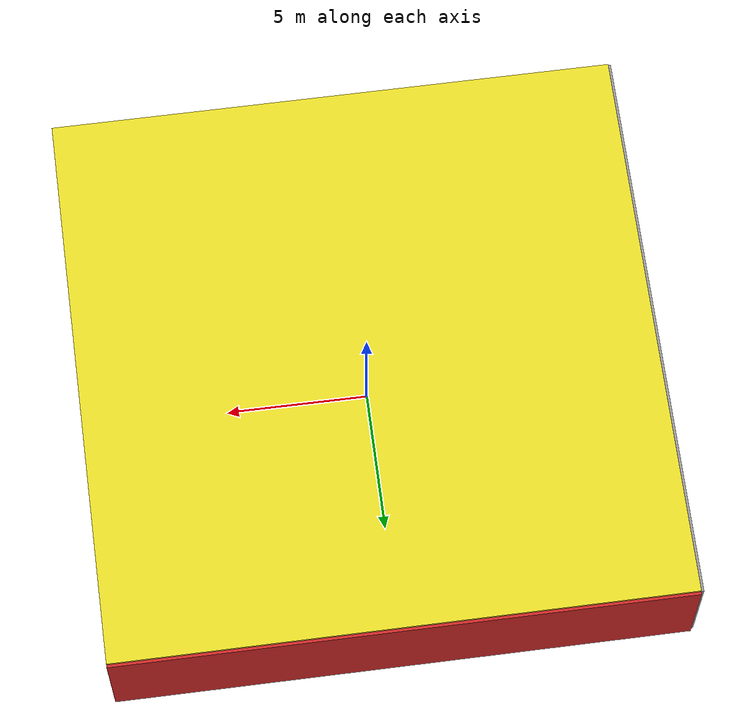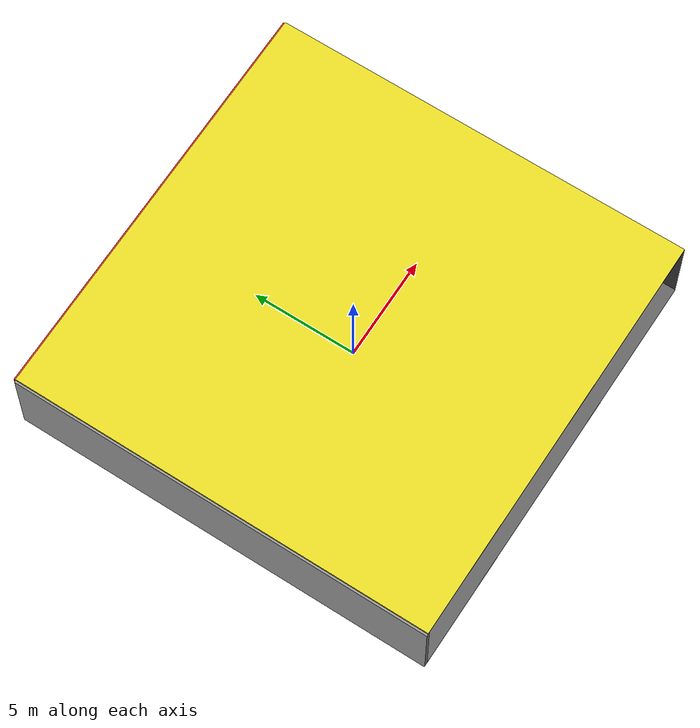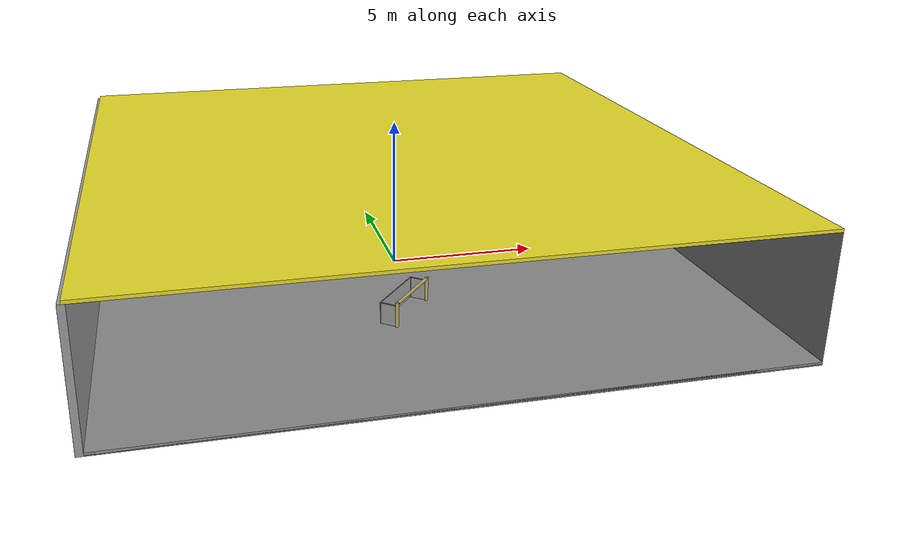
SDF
<sdf version="1.4">
 <world name="default">
  <physics type="ode">
   <max_step_size>0.001</max_step_size>
   <real_time_factor>1</real_time_factor>
   <real_time_update_rate>1000</real_time_update_rate>
   <gravity>0 0 -9.8</gravity>
  </physics>
  <scene><ambient>0.4 0.4 0.4 1</ambient><background>0.7 0.7 0.7 1</background><shadows>1</shadows></scene>
  <model name="Surrounding">
   <static>1</static>
   <link name="Ceiling">
    <collision name="Ceiling_Collision"><geometry><box><size>20 20 0.1</size></box></geometry></collision>
    <visual name="Ceiling_Visual">
     <geometry><box><size>20 20 0.1</size></box></geometry>
     <material>
      <script><uri>file://media/materials/scripts/gazebo.material</uri><name>Gazebo/Yellow</name></script>
     </material>
    </visual>
    <pose>0 0 4.05 0 0 0</pose>
   </link>
   <link name="Wall_South">
    <collision name="Wall_South_Collision">
     <geometry><box><size>20 0 4</size></box></geometry>
     <pose>0 0 2 0 -0 0</pose>
    </collision>
    <visual name="Wall_South_Visual">
     <pose>0 0 2 0 -0 0</pose>
     <geometry><box><size>20 0 4</size></box></geometry>
     <material>
      <script><uri>file://media/materials/scripts/gazebo.material</uri><name>Gazebo/GreyTransparent</name></script>
     </material>
    </visual>
    <velocity_decay><linear>0</linear><angular>0</angular></velocity_decay>
    <pose>0 -10 0 0 -0 0</pose>
   </link>
   <link name="Wall_East">
    <collision name="Wall_21_Collision">
     <geometry><box><size>20 0 4</size></box></geometry>
     <pose>0 0 2 0 -0 0</pose>
    </collision>
    <visual name="Wall_21_Visual">
     <pose>0 0 2 0 -0 0</pose>
     <geometry><box><size>20 0 4</size></box></geometry>
     <material>
      <script><uri>file://media/materials/scripts/gazebo.material</uri><name>Gazebo/FlatBlack</name></script>
     </material>
    </visual>
    <velocity_decay><linear>0</linear><angular>0</angular></velocity_decay>
    <pose>10 0 0 0 -0 1.5708</pose>
   </link>
   <link name="Wall_North">
    <collision name="Wall_22_Collision">
     <geometry><box><size>20 0.2 4</size></box></geometry>
     <pose>0 0 2 0 -0 0</pose>
    </collision>
    <visual name="Wall_22_Visual">
     <pose>0 0 2 0 -0 0</pose>
     <geometry><box><size>20 0.2 4</size></box></geometry>
     <material>
      <script><uri>file://media/materials/scripts/gazebo.material</uri><name>Gazebo/RedGlow</name></script>
     </material>
    </visual>
    <velocity_decay><linear>0</linear><angular>0</angular></velocity_decay>
    <pose>0 10 0 0 -0 0</pose>
   </link>
   <link name="Wall_West">
    <collision name="Wall_23_Collision">
     <geometry><box><size>20 0.2 4</size></box></geometry>
     <pose>0 0 2 0 -0 0</pose>
    </collision>
    <visual name="Wall_23_Visual">
     <pose>0 0 2 0 -0 0</pose>
     <geometry><box><size>20 0.2 4</size></box></geometry>
     <material>
      <script><uri>file://media/materials/scripts/gazebo.material</uri><name>Gazebo/Grey</name></script>
     </material>
    </visual>
    <velocity_decay><linear>0</linear><angular>0</angular></velocity_decay>
    <pose>-10 0 0 0 0 -1.5708</pose>
   </link>
   <link name="Ground_link">
    <collision name="collision">
     <pose>0 0 .05 0 -0 0</pose>
     <geometry><box><size>20 20 0.1</size></box></geometry>
    </collision>
    <visual name="visual">
     <pose>0 0 .05 0 -0 0</pose>
     <geometry><box><size>20 20 0.1</size></box></geometry>
     <material>
      <script><uri>file://media/materials/scripts/gazebo.material</uri><name>Gazebo/Grey</name></script>
     </material>
    </visual>
   </link>
   <static>1</static>
  </model>
  <spherical_coordinates>
   <surface_model>EARTH_WGS84</surface_model>
   <latitude_deg>0</latitude_deg>
   <longitude_deg>0</longitude_deg>
   <elevation>0</elevation>
   <heading_deg>0</heading_deg>
  </spherical_coordinates>
  <light name="lightball_0" type="diffuse">
   <diffuse>0.8 0.8 0.8 1</diffuse>
   <specular>0.2 0.2 0.2 1</specular>
   <attenuation>
    <range>100</range>
    <constant>0.7</constant>
    <linear>0.01</linear>
    <quadratic>0.001</quadratic>
   </attenuation>
   <direction>-0.5 0.1 -0.9</direction>
   <pose>2.88609558979 -7.38689564359 1.31655445611 0 0 0</pose>
  </light>
  <light name="lightball_1" type="diffuse">
   <diffuse>0.8 0.8 0.8 1</diffuse>
   <specular>0.2 0.2 0.2 1</specular>
   <attenuation>
    <range>100</range>
    <constant>0.7</constant>
    <linear>0.01</linear>
    <quadratic>0.001</quadratic>
   </attenuation>
   <direction>-0.5 0.1 -0.9</direction>
   <pose>6.69842796698 -9.85715488982 2.11705914641 0 0 0</pose>
  </light>
  <light name="lightball_2" type="diffuse">
   <diffuse>0.8 0.8 0.8 1</diffuse>
   <specular>0.2 0.2 0.2 1</specular>
   <attenuation>
    <range>100</range>
    <constant>0.7</constant>
    <linear>0.01</linear>
    <quadratic>0.001</quadratic>
   </attenuation>
   <direction>-0.5 0.1 -0.9</direction>
   <pose>-8.97798556121 2.00938142371 2.92880581104 0 0 0</pose>
  </light>
  <light name="lightball_3" type="diffuse">
   <diffuse>0.8 0.8 0.8 1</diffuse>
   <specular>0.2 0.2 0.2 1</specular>
   <attenuation>
    <range>100</range>
    <constant>0.7</constant>
    <linear>0.01</linear>
    <quadratic>0.001</quadratic>
   </attenuation>
   <direction>-0.5 0.1 -0.9</direction>
   <pose>-1.40183147757 -8.79204604724 1.28670129371 0 0 0</pose>
  </light>
  <light name="lightball_4" type="diffuse">
   <diffuse>0.8 0.8 0.8 1</diffuse>
   <specular>0.2 0.2 0.2 1</specular>
   <attenuation>
    <range>100</range>
    <constant>0.7</constant>
    <linear>0.01</linear>
    <quadratic>0.001</quadratic>
   </attenuation>
   <direction>-0.5 0.1 -0.9</direction>
   <pose>9.28839145513 -6.26465708652 3.28810331518 0 0 0</pose>
  </light>
  <light name="lightball_5" type="diffuse">
   <diffuse>0.8 0.8 0.8 1</diffuse>
   <specular>0.2 0.2 0.2 1</specular>
   <attenuation>
    <range>100</range>
    <constant>0.7</constant>
    <linear>0.01</linear>
    <quadratic>0.001</quadratic>
   </attenuation>
   <direction>-0.5 0.1 -0.9</direction>
   <pose>-5.08253936468 -1.22224899653 3.32513061855 0 0 0</pose>
  </light>
  <light name="lightball_6" type="diffuse">
   <diffuse>0.8 0.8 0.8 1</diffuse>
   <specular>0.2 0.2 0.2 1</specular>
   <attenuation>
    <range>100</range>
    <constant>0.7</constant>
    <linear>0.01</linear>
    <quadratic>0.001</quadratic>
   </attenuation>
   <direction>-0.5 0.1 -0.9</direction>
   <pose>2.71554276672 -9.0846355121 1.25654395651 0 0 0</pose>
  </light>
  <light name="lightball_7" type="diffuse">
   <diffuse>0.8 0.8 0.8 1</diffuse>
   <specular>0.2 0.2 0.2 1</specular>
   <attenuation>
    <range>100</range>
    <constant>0.7</constant>
    <linear>0.01</linear>
    <quadratic>0.001</quadratic>
   </attenuation>
   <direction>-0.5 0.1 -0.9</direction>
   <pose>4.22655963823 -2.45142170276 3.31293950497 0 0 0</pose>
  </light>
  <light name="lightball_8" type="diffuse">
   <diffuse>0.8 0.8 0.8 1</diffuse>
   <specular>0.2 0.2 0.2 1</specular>
   <attenuation>
    <range>100</range>
    <constant>0.7</constant>
    <linear>0.01</linear>
    <quadratic>0.001</quadratic>
   </attenuation>
   <direction>-0.5 0.1 -0.9</direction>
   <pose>5.75957127507 8.60775704422 3.38264967527 0 0 0</pose>
  </light>
  <light name="lightball_9" type="diffuse">
   <diffuse>0.8 0.8 0.8 1</diffuse>
   <specular>0.2 0.2 0.2 1</specular>
   <attenuation>
    <range>100</range>
    <constant>0.7</constant>
    <linear>0.01</linear>
    <quadratic>0.001</quadratic>
   </attenuation>
   <direction>-0.5 0.1 -0.9</direction>
   <pose>-1.70384968312 4.96350450219 1.62548596454 0 0 0</pose>
  </light>
  <light name="lightball_10" type="diffuse">
   <diffuse>0.8 0.8 0.8 1</diffuse>
   <specular>0.2 0.2 0.2 1</specular>
   <attenuation>
    <range>100</range>
    <constant>0.7</constant>
    <linear>0.01</linear>
    <quadratic>0.001</quadratic>
   </attenuation>
   <direction>-0.5 0.1 -0.9</direction>
   <pose>-9.09581136467 4.45331678 3.19330068601 0 0 0</pose>
  </light>
  <include>
   <uri>model://robocup_3Dsim_goal</uri>
   <pose>-0.445651122713 -4.40289828442 0 0 0 2.45425801839</pose>
  </include>
  <include><uri>model://cabinet</uri><pose>-0.630755493594 -0.778088214332 0 0 0 0.225671824163</pose></include>
  <include>
   <uri>model://robocup_3Dsim_goal</uri>
   <pose>7.71991469598 2.54293413695 0 0 0 0.182040985439</pose>
  </include>
 </world>
</sdf>

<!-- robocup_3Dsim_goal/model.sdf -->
<sdf version="1.5">
  <model name="robocup_3d_goal">
    <static>true</static>
    <link name="left_post">
      <pose>0 1.05 0.45 0 0 0</pose>
      <collision name="collision">
        <geometry>
          <cylinder>
            <radius>0.05</radius>
            <length>0.9</length>
          </cylinder>
        </geometry>
      </collision>
      <visual name="visual">
        <geometry>
          <cylinder>
            <radius>0.05</radius>
            <length>0.9</length>
          </cylinder>
        </geometry>
        <material>
          <script>
            <uri>file://media/materials/scripts/gazebo.material</uri>
            <name>Gazebo/ZincYellow</name>
          </script>
        </material>
      </visual>
    </link>
    <link name="left_support_horiz_lower">
      <pose>0.30 1.05 0.01 0 0 0</pose>
      <collision name="collision">
        <geometry>
          <box>
            <size>0.50 0.02 0.02</size>
          </box>
        </geometry>
      </collision>
      <visual name="visual">
        <geometry>
          <box>
            <size>0.50 0.02 0.02</size>
          </box>
        </geometry>
        <material>
          <script>
            <uri>file://media/materials/scripts/gazebo.material</uri>
            <name>Gazebo/White</name>
          </script>
        </material>
      </visual>
    </link>
    <link name="left_support_horiz_upper">
      <pose>0.30 1.05 0.79 0 0 0</pose>
      <collision name="collision">
        <geometry>
          <box>
            <size>0.50 0.02 0.02</size>
          </box>
        </geometry>
      </collision>
      <visual name="visual">
        <geometry>
          <box>
            <size>0.50 0.02 0.02</size>
          </box>
        </geometry>
        <material>
          <script>
            <uri>file://media/materials/scripts/gazebo.material</uri>
            <name>Gazebo/White</name>
          </script>
        </material>
      </visual>
    </link>
    <link name="left_support_vertical">
      <pose>0.56 1.05 0.4 0 1.5708 0</pose>
      <collision name="collision">
        <geometry>
          <box>
            <size>0.80 0.02 0.02</size>
          </box>
        </geometry>
      </collision>
      <visual name="visual">
        <geometry>
          <box>
            <size>0.80 0.02 0.02</size>
          </box>
        </geometry>
        <material>
          <script>
            <uri>file://media/materials/scripts/gazebo.material</uri>
            <name>Gazebo/White</name>
          </script>
        </material>
      </visual>
    </link>
    <link name="right_support_horiz_lower">
      <pose>0.30 -1.05 0.01 0 0 0</pose>
      <collision name="collision">
        <geometry>
          <box>
            <size>0.50 0.02 0.02</size>
          </box>
        </geometry>
      </collision>
      <visual name="visual">
        <geometry>
          <box>
            <size>0.50 0.02 0.02</size>
          </box>
        </geometry>
        <material>
          <script>
            <uri>file://media/materials/scripts/gazebo.material</uri>
            <name>Gazebo/White</name>
          </script>
        </material>
      </visual>
    </link>
    <link name="right_support_horiz_upper">
      <pose>0.30 -1.05 0.79 0 0 0</pose>
      <collision name="collision">
        <geometry>
          <box>
            <size>0.50 0.02 0.02</size>
          </box>
        </geometry>
      </collision>
      <visual name="visual">
        <geometry>
          <box>
            <size>0.50 0.02 0.02</size>
          </box>
        </geometry>
        <material>
          <script>
            <uri>file://media/materials/scripts/gazebo.material</uri>
            <name>Gazebo/White</name>
          </script>
        </material>
      </visual>
    </link>
    <link name="right_support_vertical">
      <pose>0.56 -1.05 0.4 0 1.5708 0</pose>
      <collision name="collision">
        <geometry>
          <box>
            <size>0.80 0.02 0.02</size>
          </box>
        </geometry>
      </collision>
      <visual name="visual">
        <geometry>
          <box>
            <size>0.80 0.02 0.02</size>
          </box>
        </geometry>
        <material>
          <script>
            <uri>file://media/materials/scripts/gazebo.material</uri>
            <name>Gazebo/White</name>
          </script>
        </material>
      </visual>
    </link>
    <link name="center_support_horiz_lower">
      <pose>0.56 0 0.01 0 1.5708 0</pose>
      <collision name="collision">
        <geometry>
          <box>
            <size>0.02 2.08 0.02</size>
          </box>
        </geometry>
      </collision>
      <visual name="visual">
        <geometry>
          <box>
            <size>0.02 2.08 0.02</size>
          </box>
        </geometry>
        <material>
          <script>
            <uri>file://media/materials/scripts/gazebo.material</uri>
            <name>Gazebo/White</name>
          </script>
        </material>
      </visual>
    </link>
    <link name="center_support_horiz_upper">
      <pose>0.56 0 0.79 0 1.5708 0</pose>
      <collision name="collision">
        <geometry>
          <box>
            <size>0.02 2.08 0.02</size>
          </box>
        </geometry>
      </collision>
      <visual name="visual">
        <geometry>
          <box>
            <size>0.02 2.08 0.02</size>
          </box>
        </geometry>
        <material>
          <script>
            <uri>file://media/materials/scripts/gazebo.material</uri>
            <name>Gazebo/White</name>
          </script>
        </material>
      </visual>
    </link>
    <link name="right_post">
      <pose>0 -1.05 0.45 0 0 0</pose>
      <collision name="collision">
        <geometry>
          <cylinder>
            <radius>0.05</radius>
            <length>0.9</length>
          </cylinder>
        </geometry>
      </collision>
      <visual name="visual">
        <geometry>
          <cylinder>
            <radius>0.05</radius>
            <length>0.9</length>
          </cylinder>
        </geometry>
        <material>
          <script>
            <uri>file://media/materials/scripts/gazebo.material</uri>
            <name>Gazebo/ZincYellow</name>
          </script>
        </material>
      </visual>
    </link>
    <link name="crossbar">
      <pose>0 0 0.85 1.57 1.57 0</pose>
      <collision name="collision">
        <geometry>
          <cylinder>
            <radius>0.05</radius>
            <length>2.0</length>
          </cylinder>
        </geometry>
      </collision>
      <visual name="visual">
        <geometry>
          <cylinder>
            <radius>0.05</radius>
            <length>2.0</length>
          </cylinder>
        </geometry>
        <material>
          <script>
            <uri>file://media/materials/scripts/gazebo.material</uri>
            <name>Gazebo/ZincYellow</name>
          </script>
        </material>
      </visual>
    </link>
    <link name="center_net">
      <pose>0.56 0 0.40 0 0 0</pose>
      <collision name="collision">
        <geometry>
          <box>
            <size>0.01 2.1 0.80</size>
          </box>
        </geometry>
      </collision>
      <visual name="visual">
        <geometry>
          <box>
            <size>0.01 2.1 0.80</size>
          </box>
        </geometry>
        <material>
          <script>
            <uri>model://../model_source/models/robocup09_spl_field/materials/scripts/</uri>
            <uri>model://../model_source/models/robocup09_spl_field/materials/textures/</uri>
            <name>RoboCup/Net</name>
          </script>
        </material>
      </visual>
    </link>
    <link name="left_net">
      <pose>0.30 1.05 0.40 0 0 0</pose>
      <collision name="collision">
        <geometry>
          <box>
            <size>0.50 0.01 0.76</size>
          </box>
        </geometry>
      </collision>
      <visual name="visual">
        <geometry>
          <box>
            <size>0.50 0.01 0.76</size>
          </box>
        </geometry>
        <material>
          <script>
            <uri>model://../model_source/models/robocup09_spl_field/materials/scripts/</uri>
            <uri>model://../model_source/models/robocup09_spl_field/materials/textures/</uri>
            <name>RoboCup/Net</name>
          </script>
        </material>
      </visual>
    </link>
    <link name="right_net">
      <pose>0.30 -1.05 0.40 0 0 0</pose>
      <collision name="collision">
        <geometry>
          <box>
            <size>0.50 0.01 0.76</size>
          </box>
        </geometry>
      </collision>
      <visual name="visual">
        <geometry>
          <box>
            <size>0.50 0.01 0.76</size>
          </box>
        </geometry>
        <material>
          <script>
            <uri>model://../model_source/models/robocup09_spl_field/materials/scripts/</uri>
            <uri>model://../model_source/models/robocup09_spl_field/materials/textures/</uri>
            <name>RoboCup/Net</name>
          </script>
        </material>
      </visual>
    </link>
  </model>
</sdf>

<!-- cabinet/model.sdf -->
<sdf version="1.5">
  <model name="cabinet">
    <static>true</static>
    <link name="cabinet_bottom_plate">
      <inertial>
        <pose>0 0 -1 0 0 0</pose>
        <inertia>
          <ixx>2.050000</ixx>
          <ixy>0</ixy>
          <ixz>0</ixz>
          <iyy>2.050000</iyy>
          <iyz>0</iyz>
          <izz>2.050000</izz>
        </inertia>
        <mass>25.000000</mass>
      </inertial>
      <collision name="cabinet_bottom_plate_geom">
        <pose>0 0 0.010000 0 0 0</pose>
        <geometry>
          <box>
            <size>0.450000 0.450000 0.020000</size>
          </box>
        </geometry>
      </collision>
      <visual name="cabinet_bottom_plate_geom_visual">
        <pose>0 0 0.010000 0 0 0</pose>
        <geometry>
          <box>
            <size>0.450000 0.450000 0.020000</size>
          </box>
        </geometry>
        <material>
          <script>
            <uri>model://media/materials/scripts/gazebo.material</uri>
            <name>Gazebo/Wood</name>
          </script>
        </material>
      </visual>
      <collision name="cabinet_bottom_plate_geom_cabinet_back_plate">
        <pose>0.235000 0 0.510000 0 0 0</pose>
        <geometry>
          <box>
            <size>0.020000 0.450000 1.020000</size>
          </box>
        </geometry>
      </collision>
      <visual name="cabinet_bottom_plate_geom_cabinet_back_plate_visual">
        <pose>0.235000 0 0.510000 0 0 0</pose>
        <geometry>
          <box>
            <size>0.020000 0.450000 1.020000</size>
          </box>
        </geometry>
        <material>
          <script>
            <uri>model://media/materials/scripts/gazebo.material</uri>
            <name>Gazebo/Wood</name>
          </script>
        </material>
      </visual>
      <collision name="cabinet_bottom_plate_geom_cabinet_left_plate">
        <pose>0 0.235000 0.510000 0 0 0</pose>
        <geometry>
          <box>
            <size>0.450000 0.020000 1.020000</size>
          </box>
        </geometry>
      </collision>
      <visual name="cabinet_bottom_plate_geom_cabinet_left_plate_visual">
        <pose>0 0.235000 0.510000 0 0 0</pose>
        <geometry>
          <box>
            <size>0.450000 0.020000 1.020000</size>
          </box>
        </geometry>
        <material>
          <script>
            <uri>model://media/materials/scripts/gazebo.material</uri>
            <name>Gazebo/Wood</name>
          </script>
        </material>
      </visual>
      <collision name="cabinet_bottom_plate_geom_cabinet_middle_plate">
        <pose>0 0 0.510000 0 0 0</pose>
        <geometry>
          <box>
            <size>0.450000 0.450000 0.020000</size>
          </box>
        </geometry>
      </collision>
      <visual name="cabinet_bottom_plate_geom_cabinet_middle_plate_visual">
        <pose>0 0 0.510000 0 0 0</pose>
        <geometry>
          <box>
            <size>0.450000 0.450000 0.020000</size>
          </box>
        </geometry>
        <material>
          <script>
            <uri>model://media/materials/scripts/gazebo.material</uri>
            <name>Gazebo/Wood</name>
          </script>
        </material>
      </visual>
      <collision name="cabinet_bottom_plate_geom_cabinet_right_plate">
        <pose>0 -0.235000 0.510000 0 0 0</pose>
        <geometry>
          <box>
            <size>0.450000 0.020000 1.020000</size>
          </box>
        </geometry>
      </collision>
      <visual name="cabinet_bottom_plate_geom_cabinet_right_plate_visual">
        <pose>0 -0.235000 0.510000 0 0 0</pose>
        <geometry>
          <box>
            <size>0.450000 0.020000 1.020000</size>
          </box>
        </geometry>
        <material>
          <script>
            <uri>model://media/materials/scripts/gazebo.material</uri>
            <name>Gazebo/Wood</name>
          </script>
        </material>
      </visual>
      <collision name="cabinet_bottom_plate_geom_cabinet_top_plate">
        <pose>0 0 1.010000 0 0 0</pose>
        <geometry>
          <box>
            <size>0.450000 0.450000 0.020000</size>
          </box>
        </geometry>
      </collision>
      <visual name="cabinet_bottom_plate_geom_cabinet_top_plate_visual">
        <pose>0 0 1.010000 0 0 0</pose>
        <geometry>
          <box>
            <size>0.450000 0.450000 0.020000</size>
          </box>
        </geometry>
        <material>
          <script>
            <uri>model://media/materials/scripts/gazebo.material</uri>
            <name>Gazebo/Wood</name>
          </script>
        </material>
      </visual>
    </link>
  </model>
</sdf>
